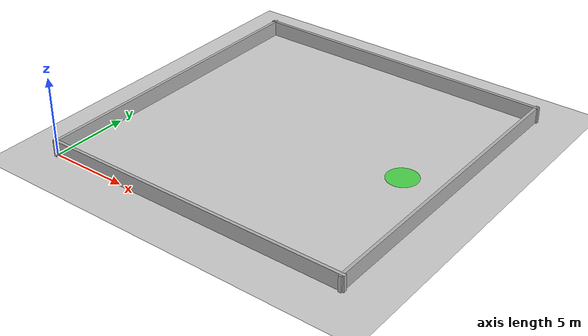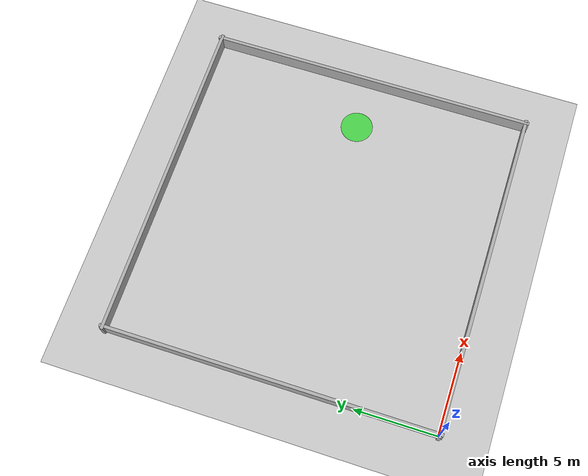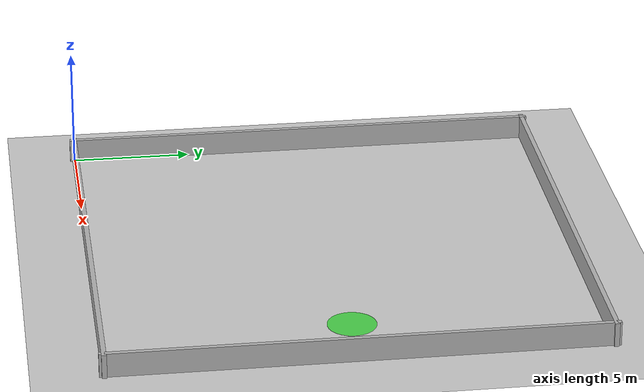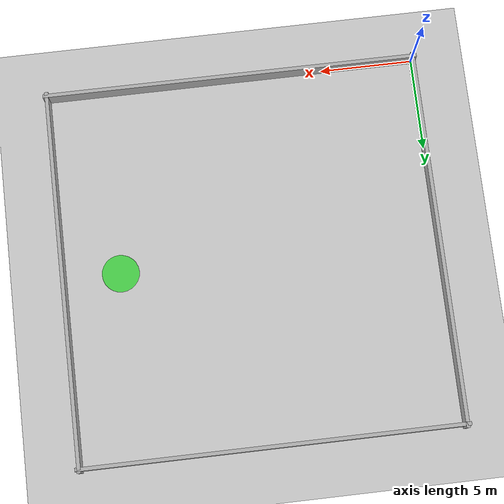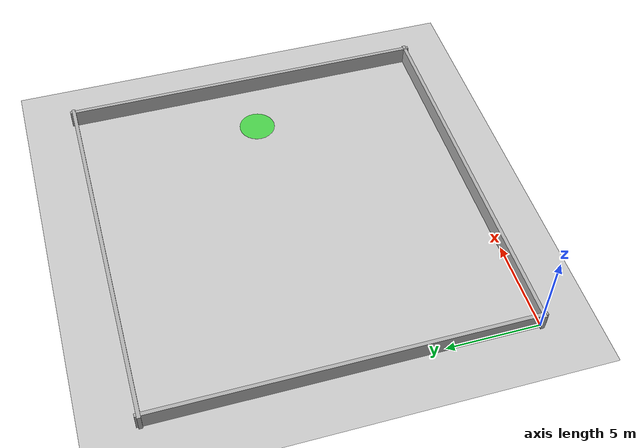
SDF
<?xml version="1.0" ?>
<!--
  open_field.world — Simple open arena for initial tuning.
  20×20 m, no internal obstacles.
  Use this to validate flocking behavior before adding obstacles.
-->
<sdf version="1.7">
  <world name="open_field">
    <gravity>0 0 -9.8</gravity>
    <physics type="ode">
      <real_time_update_rate>1000</real_time_update_rate>
      <max_step_size>0.001</max_step_size>
    </physics>
    <scene>
      <ambient>0.4 0.4 0.4 1</ambient>
      <background>0.7 0.7 0.7 1</background>
      <shadows>true</shadows>
    </scene>

    <include><uri>model://ground_plane</uri></include>
    <include><uri>model://sun</uri></include>

    <!-- Outer boundary (20×20 m) -->
    <model name="wall_north">
      <static>true</static><pose>10 20 0.5 0 0 0</pose>
      <link name="link">
        <collision name="c"><geometry><box><size>20.4 0.2 1.0</size></box></geometry></collision>
        <visual name="v"><geometry><box><size>20.4 0.2 1.0</size></box></geometry>
          <material><ambient>0.7 0.7 0.7 1</ambient></material></visual>
      </link>
    </model>
    <model name="wall_south">
      <static>true</static><pose>10 0 0.5 0 0 0</pose>
      <link name="link">
        <collision name="c"><geometry><box><size>20.4 0.2 1.0</size></box></geometry></collision>
        <visual name="v"><geometry><box><size>20.4 0.2 1.0</size></box></geometry>
          <material><ambient>0.7 0.7 0.7 1</ambient></material></visual>
      </link>
    </model>
    <model name="wall_west">
      <static>true</static><pose>0 10 0.5 0 0 0</pose>
      <link name="link">
        <collision name="c"><geometry><box><size>0.2 20.4 1.0</size></box></geometry></collision>
        <visual name="v"><geometry><box><size>0.2 20.4 1.0</size></box></geometry>
          <material><ambient>0.7 0.7 0.7 1</ambient></material></visual>
      </link>
    </model>
    <model name="wall_east">
      <static>true</static><pose>20 10 0.5 0 0 0</pose>
      <link name="link">
        <collision name="c"><geometry><box><size>0.2 20.4 1.0</size></box></geometry></collision>
        <visual name="v"><geometry><box><size>0.2 20.4 1.0</size></box></geometry>
          <material><ambient>0.7 0.7 0.7 1</ambient></material></visual>
      </link>
    </model>

    <!-- Goal zone marker at far end -->
    <model name="goal_marker">
      <static>true</static>
      <pose>17 10 0.01 0 0 0</pose>
      <link name="link">
        <visual name="v">
          <geometry><cylinder><radius>1.0</radius><length>0.02</length></cylinder></geometry>
          <material><ambient>0 0.9 0 0.6</ambient><diffuse>0 0.9 0 0.6</diffuse></material>
        </visual>
      </link>
    </model>
  </world>
</sdf>
